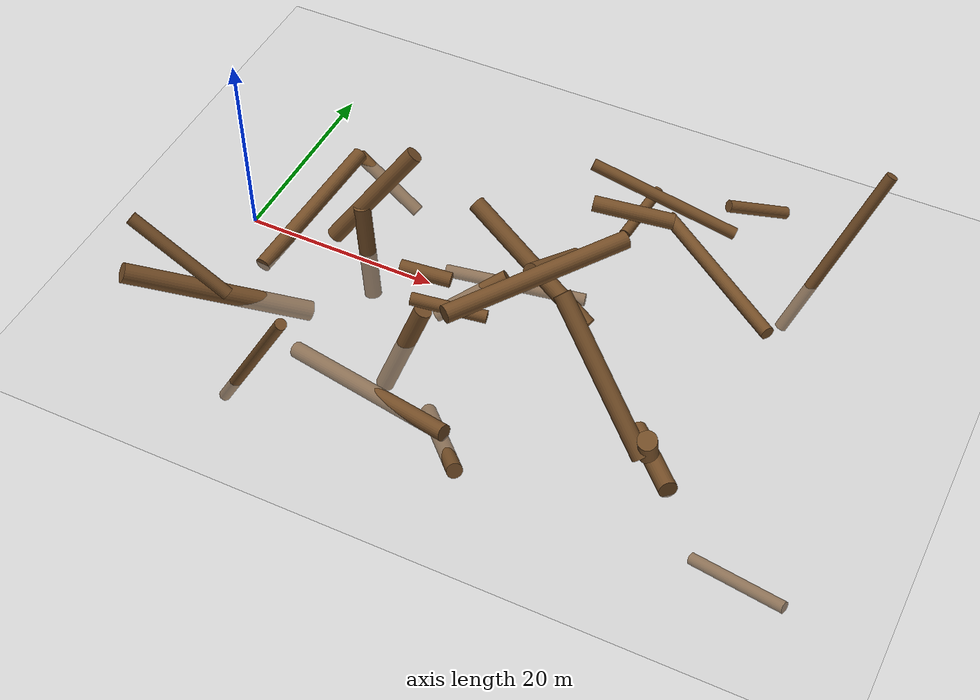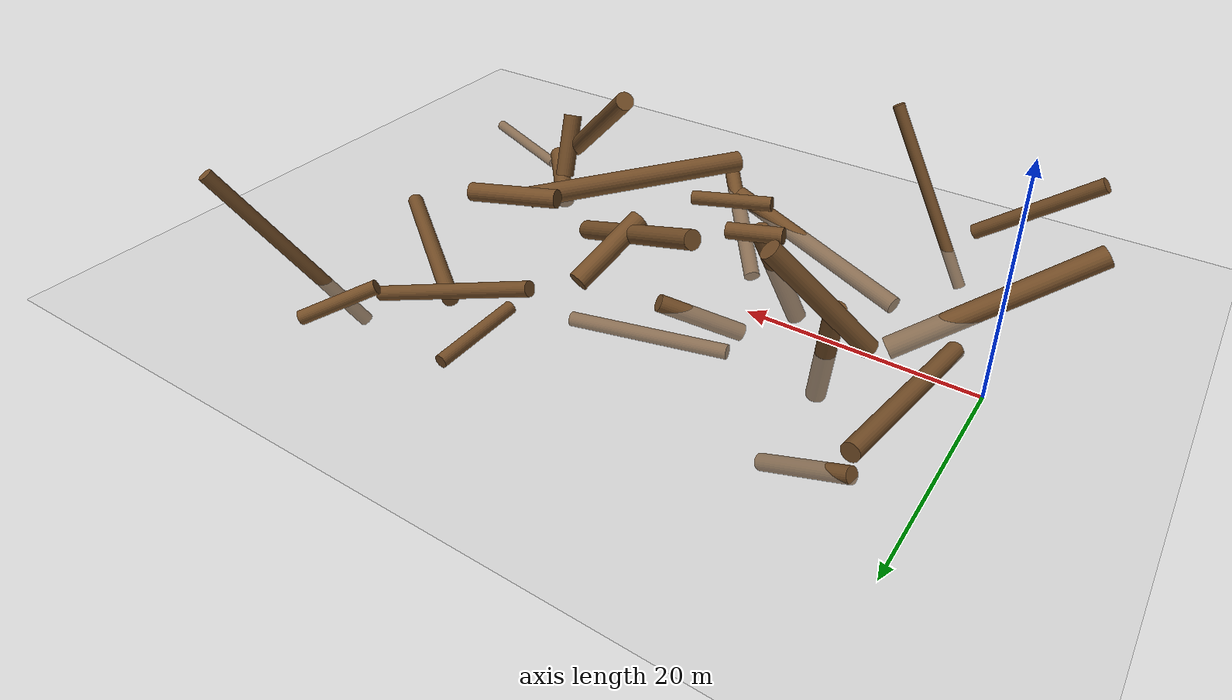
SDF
<sdf version='1.7'>
            <world name='default'>
                <light name='sun' type='directional'>
                <cast_shadows>1</cast_shadows>
                <pose>0 0 10 0 -0 0</pose>
                <diffuse>0.8 0.8 0.8 1</diffuse>
                <specular>0.2 0.2 0.2 1</specular>
                <attenuation>
                    <range>1000</range>
                    <constant>0.9</constant>
                    <linear>0.01</linear>
                    <quadratic>0.001</quadratic>
                </attenuation>
                <direction>-0.5 0.1 -0.9</direction>
                <spot>
                    <inner_angle>0</inner_angle>
                    <outer_angle>0</outer_angle>
                    <falloff>0</falloff>
                </spot>
                </light>
                <model name='ground_plane'>
                <static>1</static>
                <link name='link'>
                    <collision name='collision'>
                    <geometry>
                        <plane>
                        <normal>0 0 1</normal>
                        <size>100 100</size>
                        </plane>
                    </geometry>
                    <surface>
                        <contact>
                        <collide_bitmask>65535</collide_bitmask>
                        <ode/>
                        </contact>
                        <friction>
                        <ode>
                            <mu>100</mu>
                            <mu2>50</mu2>
                        </ode>
                        <torsional>
                            <ode/>
                        </torsional>
                        </friction>
                        <bounce/>
                    </surface>
                    <max_contacts>10</max_contacts>
                    </collision>
                    <visual name='visual'>
                    <cast_shadows>0</cast_shadows>
                    <geometry>
                        <plane>
                        <normal>0 0 1</normal>
                        <size>100 100</size>
                        </plane>
                    </geometry>
                    <material>
                        <script>
                        <uri>file://media/materials/scripts/gazebo.material</uri>
                        <name>Gazebo/Grey</name>
                        </script>
                    </material>
                    </visual>
                    <self_collide>0</self_collide>
                    <enable_wind>0</enable_wind>
                    <kinematic>0</kinematic>
                </link>
                </model>
                <gravity>0 0 -9.8</gravity>
                <magnetic_field>6e-06 2.3e-05 -4.2e-05</magnetic_field>
                <atmosphere type='adiabatic'/>
                <physics type='ode'>
                <max_step_size>0.001</max_step_size>
                <real_time_factor>1</real_time_factor>
                <real_time_update_rate>1000</real_time_update_rate>
                </physics>
                <scene>
                <ambient>0.4 0.4 0.4 1</ambient>
                <background>0.7 0.7 0.7 1</background>
                <shadows>1</shadows>
                </scene>
                <wind/>
                <spherical_coordinates>
                <surface_model>EARTH_WGS84</surface_model>
                <latitude_deg>0</latitude_deg>
                <longitude_deg>0</longitude_deg>
                <elevation>0</elevation>
                <heading_deg>0</heading_deg>
                </spherical_coordinates>
                <model name='cylinder_1'>
      <static>1</static>
      <link name='link'>
        <pose frame=''>0 0 0.1 0 -0 0</pose>
        <collision name='collision_trunk'>
          <pose frame=''>0 0 2 0 -0 0</pose>
          <geometry>
            <cylinder>
              <radius>0.6332730780074725</radius>
              <length>14.298129077519324</length>
            </cylinder>
          </geometry>
        </collision>
        <visual name='trunk'>
          <pose frame=''>0 0 2 0 -0 0</pose>
          <geometry>
            <cylinder>
              <radius>0.6332730780074725</radius>
              <length>14.298129077519324</length>
            </cylinder>
          </geometry>
          <material>
            <script>
              <uri>model://tree_simple/scripts</uri>
              <uri>model://tree_simple/materials/textures</uri>
              <name>TreeSimple/Trunk</name>
            </script>
          </material>
        </visual>
        <self_collide>0</self_collide>
        <kinematic>0</kinematic>
      </link>
      <pose frame=''>24.746663102331517 4.74387877043889 -1.911222308014602 51.93643473828738 133.16870499976486 165.2249993269922</pose>
    </model>
    <model name='cylinder_2'>
      <static>1</static>
      <link name='link'>
        <pose frame=''>0 0 0.1 0 -0 0</pose>
        <collision name='collision_trunk'>
          <pose frame=''>0 0 2 0 -0 0</pose>
          <geometry>
            <cylinder>
              <radius>0.5567983242394761</radius>
          <length>18.11709301481185</length>
            </cylinder>
          </geometry>
        </collision>
        <visual name='trunk'>
          <pose frame=''>0 0 2 0 -0 0</pose>
          <geometry>
            <cylinder>
              <radius>0.5567983242394761</radius>
          <length>18.11709301481185</length>
            </cylinder>
          </geometry>
          <material>
            <script>
              <uri>model://tree_simple/scripts</uri>
              <uri>model://tree_simple/materials/textures</uri>
              <name>TreeSimple/Trunk</name>
            </script>
          </material>
        </visual>
        <self_collide>0</self_collide>
        <kinematic>0</kinematic>
      </link>
      <pose frame=''>10.857016587526715 -19.1333345206575 2.593963444304717 34.48033898409566 135.59370243055648 131.94657251270357</pose>
    </model>
    <model name='cylinder_3'>
      <static>1</static>
      <link name='link'>
        <pose frame=''>0 0 0.1 0 -0 0</pose>
        <collision name='collision_trunk'>
          <pose frame=''>0 0 2 0 -0 0</pose>
          <geometry>
            <cylinder>
              <radius>0.6072998163909198</radius>
          <length>19.43467662915422</length>
            </cylinder>
          </geometry>
        </collision>
        <visual name='trunk'>
          <pose frame=''>0 0 2 0 -0 0</pose>
          <geometry>
            <cylinder>
              <radius>0.6072998163909198</radius>
          <length>19.43467662915422</length>
            </cylinder>
          </geometry>
          <material>
            <script>
              <uri>model://tree_simple/scripts</uri>
              <uri>model://tree_simple/materials/textures</uri>
              <name>TreeSimple/Trunk</name>
            </script>
          </material>
        </visual>
        <self_collide>0</self_collide>
        <kinematic>0</kinematic>
      </link>
      <pose frame=''>54.357683217171974 17.10581799041804 1.557689791115549 163.03268432949838 125.22945027138404 111.52218940028395</pose>
    </model>
    <model name='cylinder_4'>
      <static>1</static>
      <link name='link'>
        <pose frame=''>0 0 0.1 0 -0 0</pose>
        <collision name='collision_trunk'>
          <pose frame=''>0 0 2 0 -0 0</pose>
          <geometry>
            <cylinder>
              <radius>0.8164318975083905</radius>
          <length>19.774951102751853</length>
            </cylinder>
          </geometry>
        </collision>
        <visual name='trunk'>
          <pose frame=''>0 0 2 0 -0 0</pose>
          <geometry>
            <cylinder>
              <radius>0.8164318975083905</radius>
          <length>19.774951102751853</length>
            </cylinder>
          </geometry>
          <material>
            <script>
              <uri>model://tree_simple/scripts</uri>
              <uri>model://tree_simple/materials/textures</uri>
              <name>TreeSimple/Trunk</name>
            </script>
          </material>
        </visual>
        <self_collide>0</self_collide>
        <kinematic>0</kinematic>
      </link>
      <pose frame=''>18.549410878208732 -13.25029402978178 -1.4070333321031918 63.836142430766095 55.28658044823646 96.0954341843655</pose>
    </model>
    <model name='cylinder_5'>
      <static>1</static>
      <link name='link'>
        <pose frame=''>0 0 0.1 0 -0 0</pose>
        <collision name='collision_trunk'>
          <pose frame=''>0 0 2 0 -0 0</pose>
          <geometry>
            <cylinder>
              <radius>0.8789597515361518</radius>
          <length>12.658437164146115</length>
            </cylinder>
          </geometry>
        </collision>
        <visual name='trunk'>
          <pose frame=''>0 0 2 0 -0 0</pose>
          <geometry>
            <cylinder>
              <radius>0.8789597515361518</radius>
          <length>12.658437164146115</length>
            </cylinder>
          </geometry>
          <material>
            <script>
              <uri>model://tree_simple/scripts</uri>
              <uri>model://tree_simple/materials/textures</uri>
              <name>TreeSimple/Trunk</name>
            </script>
          </material>
        </visual>
        <self_collide>0</self_collide>
        <kinematic>0</kinematic>
      </link>
      <pose frame=''>11.218182496221072 2.361304717818065 4.455673580187101 100.59155407521155 7.005005071765296 94.97567235309941</pose>
    </model>
    <model name='cylinder_6'>
      <static>1</static>
      <link name='link'>
        <pose frame=''>0 0 0.1 0 -0 0</pose>
        <collision name='collision_trunk'>
          <pose frame=''>0 0 2 0 -0 0</pose>
          <geometry>
            <cylinder>
              <radius>0.7601940263666712</radius>
          <length>12.585695769932283</length>
            </cylinder>
          </geometry>
        </collision>
        <visual name='trunk'>
          <pose frame=''>0 0 2 0 -0 0</pose>
          <geometry>
            <cylinder>
              <radius>0.7601940263666712</radius>
          <length>12.585695769932283</length>
            </cylinder>
          </geometry>
          <material>
            <script>
              <uri>model://tree_simple/scripts</uri>
              <uri>model://tree_simple/materials/textures</uri>
              <name>TreeSimple/Trunk</name>
            </script>
          </material>
        </visual>
        <self_collide>0</self_collide>
        <kinematic>0</kinematic>
      </link>
      <pose frame=''>27.86142818872755 -13.977586581838715 -2.916038697509473 34.704281681203234 64.83916891667528 27.565226873411884</pose>
    </model>
    <model name='cylinder_7'>
      <static>1</static>
      <link name='link'>
        <pose frame=''>0 0 0.1 0 -0 0</pose>
        <collision name='collision_trunk'>
          <pose frame=''>0 0 2 0 -0 0</pose>
          <geometry>
            <cylinder>
              <radius>0.9869604460498056</radius>
          <length>19.27747928953889</length>
            </cylinder>
          </geometry>
        </collision>
        <visual name='trunk'>
          <pose frame=''>0 0 2 0 -0 0</pose>
          <geometry>
            <cylinder>
              <radius>0.9869604460498056</radius>
          <length>19.27747928953889</length>
            </cylinder>
          </geometry>
          <material>
            <script>
              <uri>model://tree_simple/scripts</uri>
              <uri>model://tree_simple/materials/textures</uri>
              <name>TreeSimple/Trunk</name>
            </script>
          </material>
        </visual>
        <self_collide>0</self_collide>
        <kinematic>0</kinematic>
      </link>
      <pose frame=''>1.0809698997044714 -11.969441434486058 2.083342277612882 155.99824751155447 40.58182065926939 5.4794607369578287</pose>
    </model>
    <model name='cylinder_8'>
      <static>1</static>
      <link name='link'>
        <pose frame=''>0 0 0.1 0 -0 0</pose>
        <collision name='collision_trunk'>
          <pose frame=''>0 0 2 0 -0 0</pose>
          <geometry>
            <cylinder>
              <radius>0.9270769992445338</radius>
          <length>6.304631438835104</length>
            </cylinder>
          </geometry>
        </collision>
        <visual name='trunk'>
          <pose frame=''>0 0 2 0 -0 0</pose>
          <geometry>
            <cylinder>
              <radius>0.9270769992445338</radius>
          <length>6.304631438835104</length>
            </cylinder>
          </geometry>
          <material>
            <script>
              <uri>model://tree_simple/scripts</uri>
              <uri>model://tree_simple/materials/textures</uri>
              <name>TreeSimple/Trunk</name>
            </script>
          </material>
        </visual>
        <self_collide>0</self_collide>
        <kinematic>0</kinematic>
      </link>
      <pose frame=''>48.098241455470934 -12.664476114051793 4.950264827535804 72.51228355183255 137.83061278084207 57.76513506813583</pose>
    </model>
    <model name='cylinder_9'>
      <static>1</static>
      <link name='link'>
        <pose frame=''>0 0 0.1 0 -0 0</pose>
        <collision name='collision_trunk'>
          <pose frame=''>0 0 2 0 -0 0</pose>
          <geometry>
            <cylinder>
              <radius>0.6624465847256793</radius>
          <length>8.55264907088312</length>
            </cylinder>
          </geometry>
        </collision>
        <visual name='trunk'>
          <pose frame=''>0 0 2 0 -0 0</pose>
          <geometry>
            <cylinder>
              <radius>0.6624465847256793</radius>
          <length>8.55264907088312</length>
            </cylinder>
          </geometry>
          <material>
            <script>
              <uri>model://tree_simple/scripts</uri>
              <uri>model://tree_simple/materials/textures</uri>
              <name>TreeSimple/Trunk</name>
            </script>
          </material>
        </visual>
        <self_collide>0</self_collide>
        <kinematic>0</kinematic>
      </link>
      <pose frame=''>6.741735973036318 12.666353582684664 -0.7280056254761691 151.87187173844342 71.95657540334416 38.93687557412325</pose>
    </model>
    <model name='cylinder_10'>
      <static>1</static>
      <link name='link'>
        <pose frame=''>0 0 0.1 0 -0 0</pose>
        <collision name='collision_trunk'>
          <pose frame=''>0 0 2 0 -0 0</pose>
          <geometry>
            <cylinder>
              <radius>0.6839385358145758</radius>
          <length>17.245997214353565</length>
            </cylinder>
          </geometry>
        </collision>
        <visual name='trunk'>
          <pose frame=''>0 0 2 0 -0 0</pose>
          <geometry>
            <cylinder>
              <radius>0.6839385358145758</radius>
          <length>17.245997214353565</length>
            </cylinder>
          </geometry>
          <material>
            <script>
              <uri>model://tree_simple/scripts</uri>
              <uri>model://tree_simple/materials/textures</uri>
              <name>TreeSimple/Trunk</name>
            </script>
          </material>
        </visual>
        <self_collide>0</self_collide>
        <kinematic>0</kinematic>
      </link>
      <pose frame=''>47.42895623642646 9.283432112469264 3.2584487250107195 177.46722842524971 1.3420037719817257 167.417318731485</pose>
    </model>
    <model name='cylinder_11'>
      <static>1</static>
      <link name='link'>
        <pose frame=''>0 0 0.1 0 -0 0</pose>
        <collision name='collision_trunk'>
          <pose frame=''>0 0 2 0 -0 0</pose>
          <geometry>
            <cylinder>
              <radius>0.5564510944601299</radius>
          <length>9.67020465568438</length>
            </cylinder>
          </geometry>
        </collision>
        <visual name='trunk'>
          <pose frame=''>0 0 2 0 -0 0</pose>
          <geometry>
            <cylinder>
              <radius>0.5564510944601299</radius>
          <length>9.67020465568438</length>
            </cylinder>
          </geometry>
          <material>
            <script>
              <uri>model://tree_simple/scripts</uri>
              <uri>model://tree_simple/materials/textures</uri>
              <name>TreeSimple/Trunk</name>
            </script>
          </material>
        </visual>
        <self_collide>0</self_collide>
        <kinematic>0</kinematic>
      </link>
      <pose frame=''>57.15289893191292 -17.507064121117104 -2.6042686476166432 171.06650939698173 138.0614614914601 76.76550353237577</pose>
    </model>
        <model name='cylinder_12'>
      <static>1</static>
      <link name='link'>
        <pose frame=''>0 0 0.1 0 -0 0</pose>
        <collision name='collision_trunk'>
          <pose frame=''>0 0 2 0 -0 0</pose>
          <geometry>
            <cylinder>
              <radius>0.8638703552235578</radius>
          <length>16.08308156949237</length>
            </cylinder>
          </geometry>
        </collision>
        <visual name='trunk'>
          <pose frame=''>0 0 2 0 -0 0</pose>
          <geometry>
            <cylinder>
              <radius>0.8638703552235578</radius>
          <length>16.08308156949237</length>
            </cylinder>
          </geometry>
          <material>
            <script>
              <uri>model://tree_simple/scripts</uri>
              <uri>model://tree_simple/materials/textures</uri>
              <name>TreeSimple/Trunk</name>
            </script>
          </material>
        </visual>
        <self_collide>0</self_collide>
        <kinematic>0</kinematic>
      </link>
      <pose frame=''>43.64613731725237 -10.370137674768273 6.343929161820499 125.60203108617341 51.152823461160835 147.0502649665606</pose>
    </model>
    <model name='cylinder_13'>
      <static>1</static>
      <link name='link'>
        <pose frame=''>0 0 0.1 0 -0 0</pose>
        <collision name='collision_trunk'>
          <pose frame=''>0 0 2 0 -0 0</pose>
          <geometry>
            <cylinder>
              <radius>0.6091622378906894</radius>
          <length>6.803549402284107</length>
            </cylinder>
          </geometry>
        </collision>
        <visual name='trunk'>
          <pose frame=''>0 0 2 0 -0 0</pose>
          <geometry>
            <cylinder>
              <radius>0.6091622378906894</radius>
          <length>6.803549402284107</length>
            </cylinder>
          </geometry>
          <material>
            <script>
              <uri>model://tree_simple/scripts</uri>
              <uri>model://tree_simple/materials/textures</uri>
              <name>TreeSimple/Trunk</name>
            </script>
          </material>
        </visual>
        <self_collide>0</self_collide>
        <kinematic>0</kinematic>
      </link>
      <pose frame=''>44.6284358416927 19.382894199415468 3.9219628794729644 167.5441167671488 18.08496857366592 162.87746932696473</pose>
    </model>
    <model name='cylinder_14'>
      <static>1</static>
      <link name='link'>
        <pose frame=''>0 0 0.1 0 -0 0</pose>
        <collision name='collision_trunk'>
          <pose frame=''>0 0 2 0 -0 0</pose>
          <geometry>
            <cylinder>
              <radius>0.9315654078061524</radius>
          <length>7.643667590263241</length>
            </cylinder>
          </geometry>
        </collision>
        <visual name='trunk'>
          <pose frame=''>0 0 2 0 -0 0</pose>
          <geometry>
            <cylinder>
              <radius>0.9315654078061524</radius>
          <length>7.643667590263241</length>
            </cylinder>
          </geometry>
          <material>
            <script>
              <uri>model://tree_simple/scripts</uri>
              <uri>model://tree_simple/materials/textures</uri>
              <name>TreeSimple/Trunk</name>
            </script>
          </material>
        </visual>
        <self_collide>0</self_collide>
        <kinematic>0</kinematic>
      </link>
      <pose frame=''>31.01002840946662 2.072779522763586 5.165171770578194 93.1316986107488 97.51034228925671 87.64802755620131</pose>
    </model>
    <model name='cylinder_15'>
      <static>1</static>
      <link name='link'>
        <pose frame=''>0 0 0.1 0 -0 0</pose>
        <collision name='collision_trunk'>
          <pose frame=''>0 0 2 0 -0 0</pose>
          <geometry>
            <cylinder>
              <radius>0.5668277487820701</radius>
          <length>7.790311942054213</length>
            </cylinder>
          </geometry>
        </collision>
        <visual name='trunk'>
          <pose frame=''>0 0 2 0 -0 0</pose>
          <geometry>
            <cylinder>
              <radius>0.5668277487820701</radius>
          <length>7.790311942054213</length>
            </cylinder>
          </geometry>
          <material>
            <script>
              <uri>model://tree_simple/scripts</uri>
              <uri>model://tree_simple/materials/textures</uri>
              <name>TreeSimple/Trunk</name>
            </script>
          </material>
        </visual>
        <self_collide>0</self_collide>
        <kinematic>0</kinematic>
      </link>
      <pose frame=''>35.29299835196292 14.354847345487578 1.964523236120307 80.02994158710777 144.8950331341005 163.2802467454661</pose>
    </model>
    <model name='cylinder_50'>
  <static>1</static>
  <link name='link'>
    <pose frame=''>0 0 0.1 0 -0 0</pose>
    <collision name='collision_trunk'>
      <pose frame=''>0 0 2 0 -0 0</pose>
      <geometry>
        <cylinder>
          <radius>0.8491655903</radius>
          <length>15.9285783991</length>
        </cylinder>
      </geometry>
    </collision>
    <visual name='trunk'>
      <pose frame=''>0 0 2 0 -0 0</pose>
      <geometry>
        <cylinder>
          <radius>0.8491655903</radius>
          <length>15.9285783991</length>
        </cylinder>
      </geometry>
      <material>
        <script>
          <uri>model://tree_simple/scripts</uri>
          <uri>model://tree_simple/materials/textures</uri>
          <name>TreeSimple/Trunk</name>
        </script>
      </material>
    </visual>
    <self_collide>0</self_collide>
    <kinematic>0</kinematic>
  </link>
  <pose frame=''>31.8137409212 1.4438537245 4.5757181979 202.1731900255 18.3140346718 180.5671633709</pose>
</model>

<model name='cylinder_51'>
  <static>1</static>
  <link name='link'>
    <pose frame=''>0 0 0.1 0 -0 0</pose>
    <collision name='collision_trunk'>
      <pose frame=''>0 0 2 0 -0 0</pose>
      <geometry>
        <cylinder>
          <radius>0.7918484952</radius>
          <length>17.040024054</length>
        </cylinder>
      </geometry>
    </collision>
    <visual name='trunk'>
      <pose frame=''>0 0 2 0 -0 0</pose>
      <geometry>
        <cylinder>
          <radius>0.7918484952</radius>
          <length>17.040024054</length>
        </cylinder>
      </geometry>
      <material>
        <script>
          <uri>model://tree_simple/scripts</uri>
          <uri>model://tree_simple/materials/textures</uri>
          <name>TreeSimple/Trunk</name>
        </script>
      </material>
    </visual>
    <self_collide>0</self_collide>
    <kinematic>0</kinematic>
  </link>
  <pose frame=''>4.3738417352 1.5954013116 0.3230317854 329.5016208414 152.4674740515 4.2408792829</pose>
</model>

<model name='cylinder_52'>
  <static>1</static>
  <link name='link'>
    <pose frame=''>0 0 0.1 0 -0 0</pose>
    <collision name='collision_trunk'>
      <pose frame=''>0 0 2 0 -0 0</pose>
      <geometry>
        <cylinder>
          <radius>0.6144055595</radius>
          <length>15.6207182722</length>
        </cylinder>
      </geometry>
    </collision>
    <visual name='trunk'>
      <pose frame=''>0 0 2 0 -0 0</pose>
      <geometry>
        <cylinder>
          <radius>0.6144055595</radius>
          <length>15.6207182722</length>
        </cylinder>
      </geometry>
      <material>
        <script>
          <uri>model://tree_simple/scripts</uri>
          <uri>model://tree_simple/materials/textures</uri>
          <name>TreeSimple/Trunk</name>
        </script>
      </material>
    </visual>
    <self_collide>0</self_collide>
    <kinematic>0</kinematic>
  </link>
  <pose frame=''>35.778121524 16.0196067939 5.5406472443 184.6563674042 302.7370978106 285.2636154157</pose>
</model>

<model name='cylinder_53'>
  <static>1</static>
  <link name='link'>
    <pose frame=''>0 0 0.1 0 -0 0</pose>
    <collision name='collision_trunk'>
      <pose frame=''>0 0 2 0 -0 0</pose>
      <geometry>
        <cylinder>
          <radius>0.7731078057</radius>
          <length>7.792896105</length>
        </cylinder>
      </geometry>
    </collision>
    <visual name='trunk'>
      <pose frame=''>0 0 2 0 -0 0</pose>
      <geometry>
        <cylinder>
          <radius>0.7731078057</radius>
          <length>7.792896105</length>
        </cylinder>
      </geometry>
      <material>
        <script>
          <uri>model://tree_simple/scripts</uri>
          <uri>model://tree_simple/materials/textures</uri>
          <name>TreeSimple/Trunk</name>
        </script>
      </material>
    </visual>
    <self_collide>0</self_collide>
    <kinematic>0</kinematic>
  </link>
  <pose frame=''>39.5489915551 8.9079732076 9.6404871704 73.1131407697 315.8853740905 1.0917696911</pose>
</model>

<model name='cylinder_54'>
  <static>1</static>
  <link name='link'>
    <pose frame=''>0 0 0.1 0 -0 0</pose>
    <collision name='collision_trunk'>
      <pose frame=''>0 0 2 0 -0 0</pose>
      <geometry>
        <cylinder>
          <radius>0.8629739583</radius>
          <length>10.5869472984</length>
        </cylinder>
      </geometry>
    </collision>
    <visual name='trunk'>
      <pose frame=''>0 0 2 0 -0 0</pose>
      <geometry>
        <cylinder>
          <radius>0.8629739583</radius>
          <length>10.5869472984</length>
        </cylinder>
      </geometry>
      <material>
        <script>
          <uri>model://tree_simple/scripts</uri>
          <uri>model://tree_simple/materials/textures</uri>
          <name>TreeSimple/Trunk</name>
        </script>
      </material>
    </visual>
    <self_collide>0</self_collide>
    <kinematic>0</kinematic>
  </link>
  <pose frame=''>11.9265975213 1.6960047895 1.9143982246 248.3878925522 56.5539921067 236.3563891619</pose>
</model>

<model name='cylinder_55'>
  <static>1</static>
  <link name='link'>
    <pose frame=''>0 0 0.1 0 -0 0</pose>
    <collision name='collision_trunk'>
      <pose frame=''>0 0 2 0 -0 0</pose>
      <geometry>
        <cylinder>
          <radius>0.8995311146</radius>
          <length>8.1886150674</length>
        </cylinder>
      </geometry>
    </collision>
    <visual name='trunk'>
      <pose frame=''>0 0 2 0 -0 0</pose>
      <geometry>
        <cylinder>
          <radius>0.8995311146</radius>
          <length>8.1886150674</length>
        </cylinder>
      </geometry>
      <material>
        <script>
          <uri>model://tree_simple/scripts</uri>
          <uri>model://tree_simple/materials/textures</uri>
          <name>TreeSimple/Trunk</name>
        </script>
      </material>
    </visual>
    <self_collide>0</self_collide>
    <kinematic>0</kinematic>
  </link>
  <pose frame=''>46.5694529052 -8.9043556601 -0.2938563253 129.5731411288 139.9997013589 266.978001862</pose>
</model>

<model name='cylinder_56'>
  <static>1</static>
  <link name='link'>
    <pose frame=''>0 0 0.1 0 -0 0</pose>
    <collision name='collision_trunk'>
      <pose frame=''>0 0 2 0 -0 0</pose>
      <geometry>
        <cylinder>
          <radius>0.8900426757</radius>
          <length>19.1995722574</length>
        </cylinder>
      </geometry>
    </collision>
    <visual name='trunk'>
      <pose frame=''>0 0 2 0 -0 0</pose>
      <geometry>
        <cylinder>
          <radius>0.8900426757</radius>
          <length>19.1995722574</length>
        </cylinder>
      </geometry>
      <material>
        <script>
          <uri>model://tree_simple/scripts</uri>
          <uri>model://tree_simple/materials/textures</uri>
          <name>TreeSimple/Trunk</name>
        </script>
      </material>
    </visual>
    <self_collide>0</self_collide>
    <kinematic>0</kinematic>
  </link>
  <pose frame=''>33.4668018567 -0.0159526439 8.3898166222 105.2982094401 111.2497324905 178.3995122541</pose>
</model>

<model name='cylinder_57'>
  <static>1</static>
  <link name='link'>
    <pose frame=''>0 0 0.1 0 -0 0</pose>
    <collision name='collision_trunk'>
      <pose frame=''>0 0 2 0 -0 0</pose>
      <geometry>
        <cylinder>
          <radius>0.6392680325</radius>
          <length>11.34162207</length>
        </cylinder>
      </geometry>
    </collision>
    <visual name='trunk'>
      <pose frame=''>0 0 2 0 -0 0</pose>
      <geometry>
        <cylinder>
          <radius>0.6392680325</radius>
          <length>11.34162207</length>
        </cylinder>
      </geometry>
      <material>
        <script>
          <uri>model://tree_simple/scripts</uri>
          <uri>model://tree_simple/materials/textures</uri>
          <name>TreeSimple/Trunk</name>
        </script>
      </material>
    </visual>
    <self_collide>0</self_collide>
    <kinematic>0</kinematic>
  </link>
  <pose frame=''>3.2580767199 -14.0983864051 7.5805199226 162.4490137033 207.5191995331 114.8892145113</pose>
</model>

<model name='cylinder_58'>
  <static>1</static>
  <link name='link'>
    <pose frame=''>0 0 0.1 0 -0 0</pose>
    <collision name='collision_trunk'>
      <pose frame=''>0 0 2 0 -0 0</pose>
      <geometry>
        <cylinder>
          <radius>0.7722552094</radius>
          <length>8.1403745182</length>
        </cylinder>
      </geometry>
    </collision>
    <visual name='trunk'>
      <pose frame=''>0 0 2 0 -0 0</pose>
      <geometry>
        <cylinder>
          <radius>0.7722552094</radius>
          <length>8.1403745182</length>
        </cylinder>
      </geometry>
      <material>
        <script>
          <uri>model://tree_simple/scripts</uri>
          <uri>model://tree_simple/materials/textures</uri>
          <name>TreeSimple/Trunk</name>
        </script>
      </material>
    </visual>
    <self_collide>0</self_collide>
    <kinematic>0</kinematic>
  </link>
  <pose frame=''>25.2781740127 2.5623902242 -0.3634477485 250.9594241964 52.3435711829 242.1620382894</pose>
</model>

<model name='cylinder_59'>
  <static>1</static>
  <link name='link'>
    <pose frame=''>0 0 0.1 0 -0 0</pose>
    <collision name='collision_trunk'>
      <pose frame=''>0 0 2 0 -0 0</pose>
      <geometry>
        <cylinder>
          <radius>0.740386823</radius>
          <length>5.0081504988</length>
        </cylinder>
      </geometry>
    </collision>
    <visual name='trunk'>
      <pose frame=''>0 0 2 0 -0 0</pose>
      <geometry>
        <cylinder>
          <radius>0.740386823</radius>
          <length>5.0081504988</length>
        </cylinder>
      </geometry>
      <material>
        <script>
          <uri>model://tree_simple/scripts</uri>
          <uri>model://tree_simple/materials/textures</uri>
          <name>TreeSimple/Trunk</name>
        </script>
      </material>
    </visual>
    <self_collide>0</self_collide>
    <kinematic>0</kinematic>
  </link>
  <pose frame=''>19.476696301 -3.8758181126 5.6988202091 265.3136514715 153.1695354693 315.8190754633</pose>
</model>

<model name='cylinder_60'>
  <static>1</static>
  <link name='link'>
    <pose frame=''>0 0 0.1 0 -0 0</pose>
    <collision name='collision_trunk'>
      <pose frame=''>0 0 2 0 -0 0</pose>
      <geometry>
        <cylinder>
          <radius>0.8903498071</radius>
          <length>10.6499512788</length>
        </cylinder>
      </geometry>
    </collision>
    <visual name='trunk'>
      <pose frame=''>0 0 2 0 -0 0</pose>
      <geometry>
        <cylinder>
          <radius>0.8903498071</radius>
          <length>10.6499512788</length>
        </cylinder>
      </geometry>
      <material>
        <script>
          <uri>model://tree_simple/scripts</uri>
          <uri>model://tree_simple/materials/textures</uri>
          <name>TreeSimple/Trunk</name>
        </script>
      </material>
    </visual>
    <self_collide>0</self_collide>
    <kinematic>0</kinematic>
  </link>
  <pose frame=''>21.7877305717 -7.308955986 0.9735684338 12.3728796436 335.8013483766 97.4977113345</pose>
</model>

<model name='cylinder_61'>
  <static>1</static>
  <link name='link'>
    <pose frame=''>0 0 0.1 0 -0 0</pose>
    <collision name='collision_trunk'>
      <pose frame=''>0 0 2 0 -0 0</pose>
      <geometry>
        <cylinder>
          <radius>0.6332035923</radius>
          <length>7.3131214399</length>
        </cylinder>
      </geometry>
    </collision>
    <visual name='trunk'>
      <pose frame=''>0 0 2 0 -0 0</pose>
      <geometry>
        <cylinder>
          <radius>0.6332035923</radius>
          <length>7.3131214399</length>
        </cylinder>
      </geometry>
      <material>
        <script>
          <uri>model://tree_simple/scripts</uri>
          <uri>model://tree_simple/materials/textures</uri>
          <name>TreeSimple/Trunk</name>
        </script>
      </material>
    </visual>
    <self_collide>0</self_collide>
    <kinematic>0</kinematic>
  </link>
  <pose frame=''>27.6705586395 -6.238859025 5.5963745822 157.4104025046 262.4311096388 25.021649515</pose>
</model>
            </world>
            </sdf>
